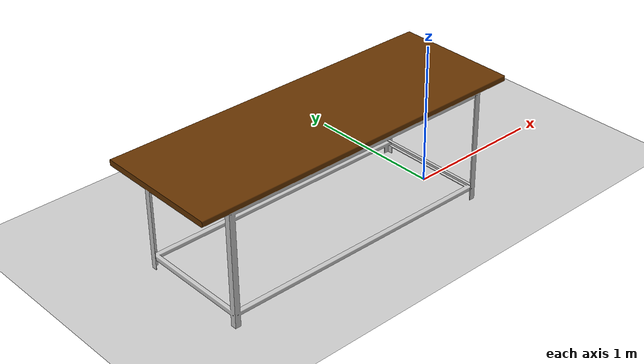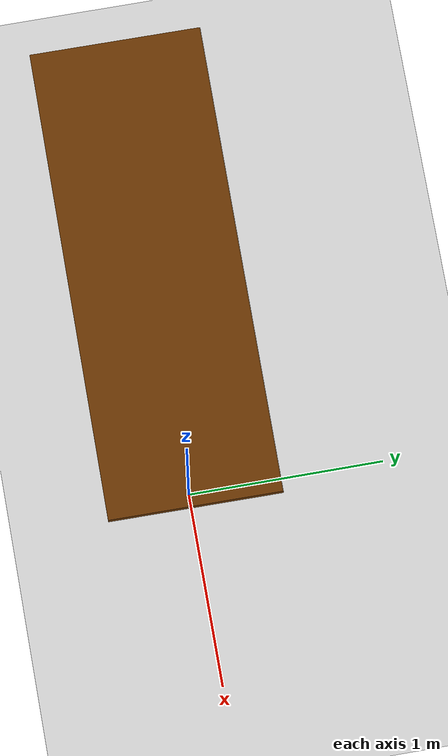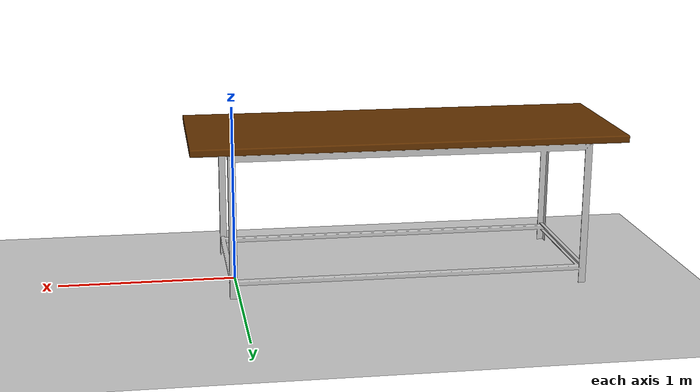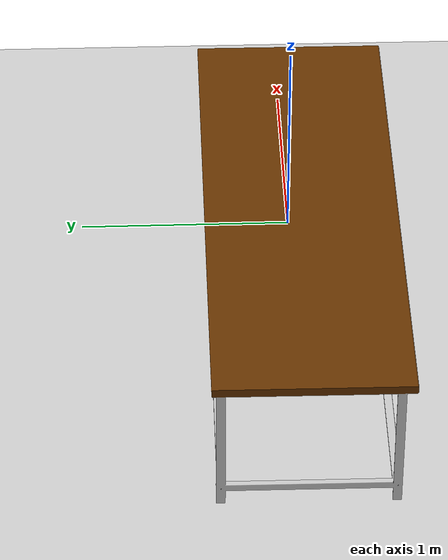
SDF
<?xml version="1.0" ?>
<sdf version="1.5">
  <world name="default">
    <!-- A global light source -->
    <light name='sun' type='directional'>
      <cast_shadows>0</cast_shadows>
      <pose frame=''>0 0 10 0 -0 0</pose>
      <diffuse>0.8 0.8 0.8 1</diffuse>
      <specular>0.1 0.1 0.1 1</specular>
      <attenuation>
        <range>1000</range>
        <constant>0.9</constant>
        <linear>0.01</linear>
        <quadratic>0.001</quadratic>
      </attenuation>
      <direction>-0.5 0.5 -1</direction>
    </light>

    <!-- A ground plane -->
    <include>
      <uri>model://ground_plane</uri>
    </include>

    <!-- A table (0 -0.4 0 0 0 1.57) -->

    <include>
      <uri>model://lar_table_great</uri>
      <pose>-0.95 0 0 0 0 1.57</pose>
    </include>

    <scene>
      <ambient>0.4 0.4 0.4 1</ambient>
      <background>0.7 0.7 0.7 1</background>
      <!-- modified (shadows) to reduce computation effort, default : true -->
      <shadows>false</shadows>
    </scene>
  </world>
</sdf>

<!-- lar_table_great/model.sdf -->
<sdf version='1.6'>
  <model name='lar_table_great'>
    <link name='great_table'>
      <pose frame=''>0 0 0.445 0 -0 0</pose>
      <inertial>
        <inertia>
          <ixx>1</ixx>
          <ixy>0</ixy>
          <ixz>0</ixz>
          <iyy>1</iyy>
          <iyz>0</iyz>
          <izz>1</izz>
        </inertia>
        <mass>25</mass>
        <pose frame=''>0 0 0 0 -0 0</pose>
      </inertial>
      <self_collide>0</self_collide>
      <kinematic>0</kinematic>
      <gravity>1</gravity>
      <visual name='visual'>
        <geometry>
          <mesh>
            <uri>model://lar_table_great/meshes/lar_table_great.dae</uri>
          </mesh>
        </geometry>
        <pose frame=''>0 0 0 0 -0 0</pose>
        <cast_shadows>0</cast_shadows>
        <transparency>0</transparency>
        <material>
          <shader type='vertex'>
            <normal_map>__default__</normal_map>
          </shader>
        </material>
      </visual>
      <collision name='collisions'>
        <laser_retro>0</laser_retro>
        <max_contacts>10</max_contacts>
        <pose frame=''>0 0 0 0 -0 0</pose>
        <geometry>
          <mesh>
            <uri>model://lar_table_great/meshes/lar_table_great.dae</uri>
          </mesh>
        </geometry>
        <surface>
          <friction>
            <ode>
              <mu>1</mu>
              <mu2>1</mu2>
              <fdir1>0 0 0</fdir1>
              <slip1>0</slip1>
              <slip2>0</slip2>
            </ode>
            <torsional>
              <coefficient>1</coefficient>
              <patch_radius>0</patch_radius>
              <surface_radius>0</surface_radius>
              <use_patch_radius>1</use_patch_radius>
              <ode>
                <slip>0</slip>
              </ode>
            </torsional>
          </friction>
          <bounce>
            <restitution_coefficient>0</restitution_coefficient>
            <threshold>1e+06</threshold>
          </bounce>
          <contact>
            <collide_without_contact>0</collide_without_contact>
            <collide_without_contact_bitmask>1</collide_without_contact_bitmask>
            <collide_bitmask>1</collide_bitmask>
            <ode>
              <soft_cfm>0</soft_cfm>
              <soft_erp>0.2</soft_erp>
              <kp>1e+13</kp>
              <kd>1</kd>
              <max_vel>0.01</max_vel>
              <min_depth>0</min_depth>
            </ode>
            <bullet>
              <split_impulse>1</split_impulse>
              <split_impulse_penetration_threshold>-0.01</split_impulse_penetration_threshold>
              <soft_cfm>0</soft_cfm>
              <soft_erp>0.2</soft_erp>
              <kp>1e+13</kp>
              <kd>1</kd>
            </bullet>
          </contact>
        </surface>
      </collision>
    </link>
    <static>0</static>
    <allow_auto_disable>1</allow_auto_disable>
  </model>
</sdf>
